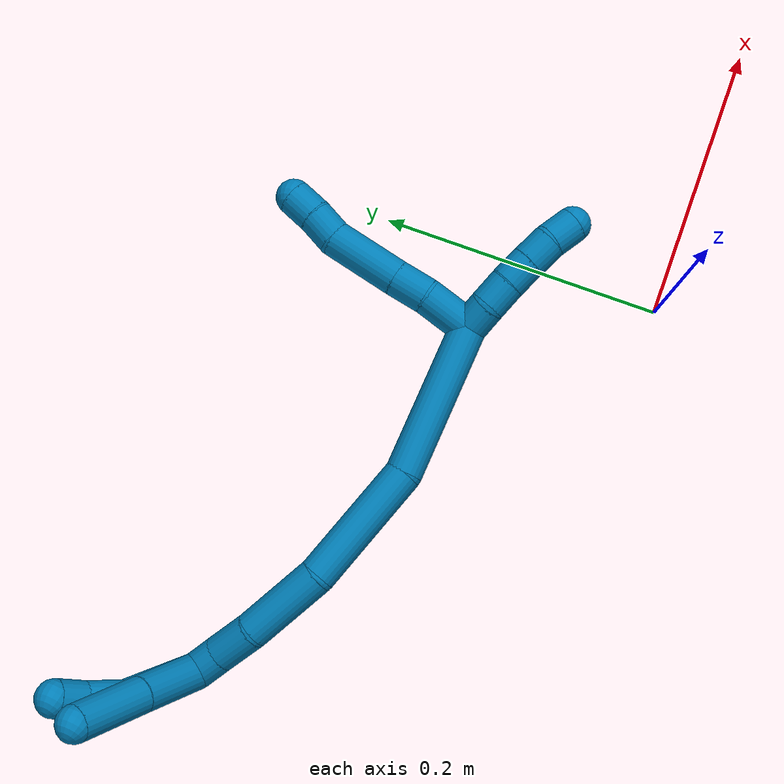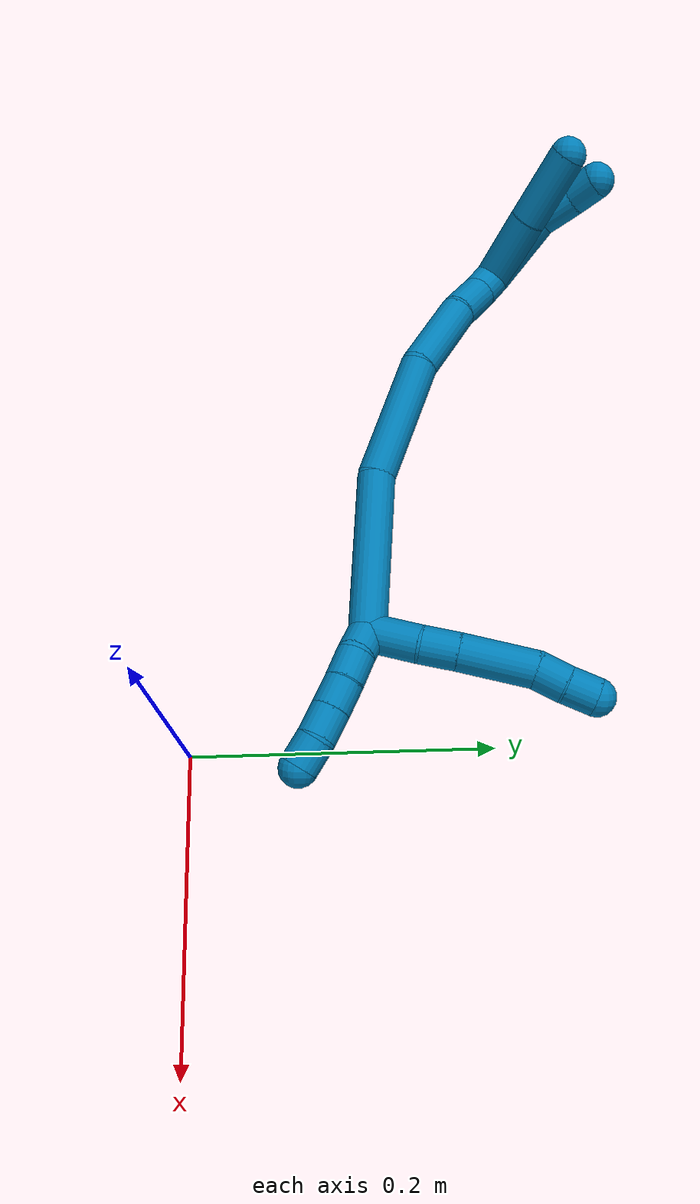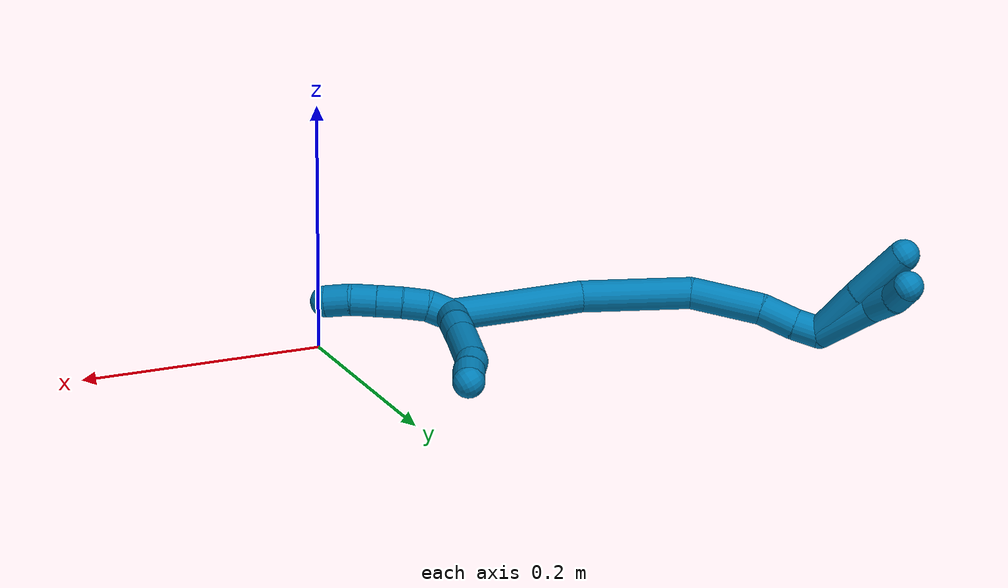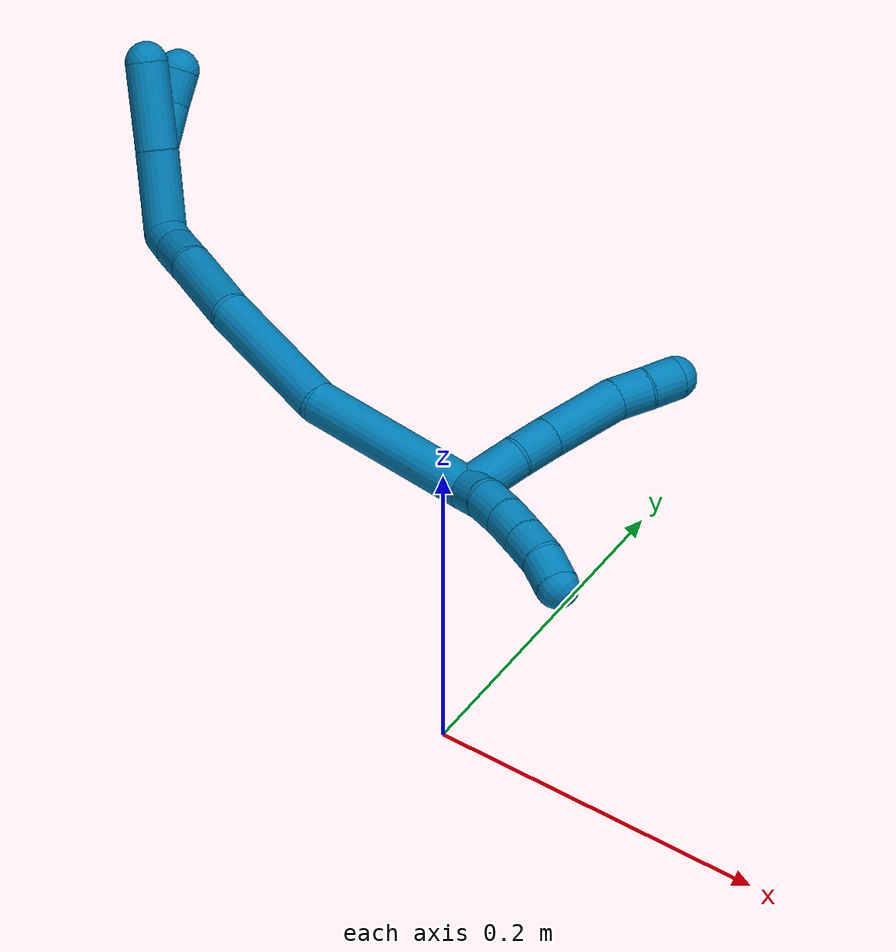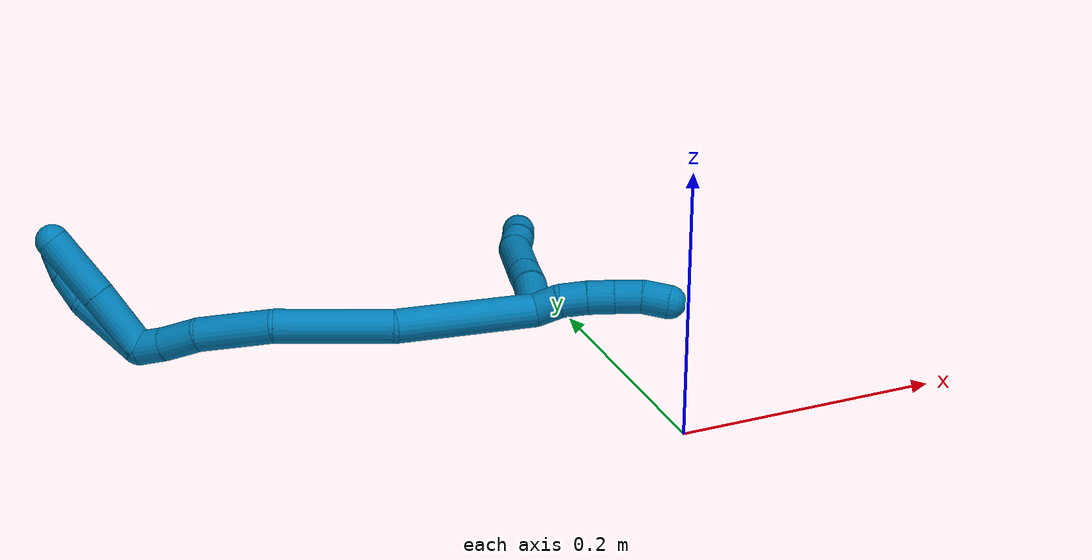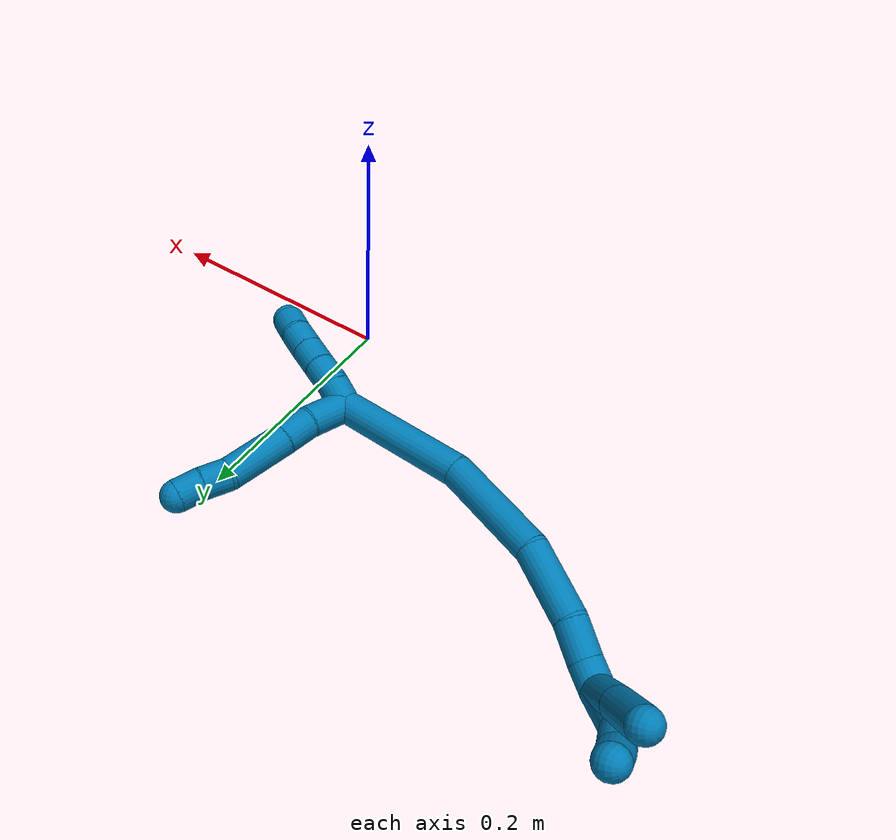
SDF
<sdf version="1.7">
 <world name="default">
  <model name="9">
   <static>0</static>
   <link name="9">
    <collision name="collision-cylinder-e_1_2_8">
     <pose>0.001437 0.017019 -0.002415 -1.71177 0.083404 -0.096058</pose>
     <geometry><cylinder><radius>0.0125</radius><length>0.034499</length></cylinder></geometry>
     <surface>
      <friction><ode><mu>1.16</mu><mu2>1.16</mu2><slip1>0</slip1><slip2>0</slip2></ode></friction>
      <contact><ode><kp>1e+06</kp><kd>1</kd><max_vel>0</max_vel><min_depth>0.001</min_depth></ode></contact>
     </surface>
    </collision>
    <visual name="visual-cylinder-e_1_2_8">
     <pose>0.001437 0.017019 -0.002415 -1.71177 0.083404 -0.096058</pose>
     <geometry><cylinder><radius>0.0125</radius><length>0.034499</length></cylinder></geometry>
     <material><ambient>0 0.490196 0.709804 1</ambient></material>
    </visual>
    <collision name="collision-cylinder-e_2_8_9">
     <pose>0.001735 0.045959 -0.006475 -1.70789 -0.094375 0.108263</pose>
     <geometry><cylinder><radius>0.0125</radius><length>0.024175</length></cylinder></geometry>
     <surface>
      <friction><ode><mu>1.16</mu><mu2>1.16</mu2><slip1>0</slip1><slip2>0</slip2></ode></friction>
      <contact><ode><kp>1e+06</kp><kd>1</kd><max_vel>0</max_vel><min_depth>0.001</min_depth></ode></contact>
     </surface>
    </collision>
    <visual name="visual-cylinder-e_2_8_9">
     <pose>0.001735 0.045959 -0.006475 -1.70789 -0.094375 0.108263</pose>
     <geometry><cylinder><radius>0.0125</radius><length>0.024175</length></cylinder></geometry>
     <material><ambient>0 0.490196 0.709804 1</ambient></material>
    </visual>
    <collision name="collision-cylinder-e_3_9_10">
     <pose>-0.001356 0.082723 -0.012271 -1.73637 -0.077333 0.09131</pose>
     <geometry><cylinder><radius>0.0125</radius><length>0.050526</length></cylinder></geometry>
     <surface>
      <friction><ode><mu>1.16</mu><mu2>1.16</mu2><slip1>0</slip1><slip2>0</slip2></ode></friction>
      <contact><ode><kp>1e+06</kp><kd>1</kd><max_vel>0</max_vel><min_depth>0.001</min_depth></ode></contact>
     </surface>
    </collision>
    <visual name="visual-cylinder-e_3_9_10">
     <pose>-0.001356 0.082723 -0.012271 -1.73637 -0.077333 0.09131</pose>
     <geometry><cylinder><radius>0.0125</radius><length>0.050526</length></cylinder></geometry>
     <material><ambient>0 0.490196 0.709804 1</ambient></material>
    </visual>
    <collision name="collision-cylinder-e_4_10_11">
     <pose>-0.002556 0.117081 -0.020275 -1.95551 0.07306 -0.108345</pose>
     <geometry><cylinder><radius>0.0125</radius><length>0.020584</length></cylinder></geometry>
     <surface>
      <friction><ode><mu>1.16</mu><mu2>1.16</mu2><slip1>0</slip1><slip2>0</slip2></ode></friction>
      <contact><ode><kp>1e+06</kp><kd>1</kd><max_vel>0</max_vel><min_depth>0.001</min_depth></ode></contact>
     </surface>
    </collision>
    <visual name="visual-cylinder-e_4_10_11">
     <pose>-0.002556 0.117081 -0.020275 -1.95551 0.07306 -0.108345</pose>
     <geometry><cylinder><radius>0.0125</radius><length>0.020584</length></cylinder></geometry>
     <material><ambient>0 0.490196 0.709804 1</ambient></material>
    </visual>
    <collision name="collision-cylinder-e_5_11_6">
     <pose>-0.00214 0.136156 -0.027389 -1.89966 -0.03315 0.046336</pose>
     <geometry><cylinder><radius>0.0125</radius><length>0.020215</length></cylinder></geometry>
     <surface>
      <friction><ode><mu>1.16</mu><mu2>1.16</mu2><slip1>0</slip1><slip2>0</slip2></ode></friction>
      <contact><ode><kp>1e+06</kp><kd>1</kd><max_vel>0</max_vel><min_depth>0.001</min_depth></ode></contact>
     </surface>
    </collision>
    <visual name="visual-cylinder-e_5_11_6">
     <pose>-0.00214 0.136156 -0.027389 -1.89966 -0.03315 0.046336</pose>
     <geometry><cylinder><radius>0.0125</radius><length>0.020215</length></cylinder></geometry>
     <material><ambient>0 0.490196 0.709804 1</ambient></material>
    </visual>
    <collision name="collision-cylinder-e_1_2_12">
     <pose>0.007545 -0.002115 -0.006213 2.81348 0.854902 2.44447</pose>
     <geometry><cylinder><radius>0.0125</radius><length>0.02</length></cylinder></geometry>
     <surface>
      <friction><ode><mu>1.16</mu><mu2>1.16</mu2><slip1>0</slip1><slip2>0</slip2></ode></friction>
      <contact><ode><kp>1e+06</kp><kd>1</kd><max_vel>0</max_vel><min_depth>0.001</min_depth></ode></contact>
     </surface>
    </collision>
    <visual name="visual-cylinder-e_1_2_12">
     <pose>0.007545 -0.002115 -0.006213 2.81348 0.854902 2.44447</pose>
     <geometry><cylinder><radius>0.0125</radius><length>0.02</length></cylinder></geometry>
     <material><ambient>0 0.490196 0.709804 1</ambient></material>
    </visual>
    <collision name="collision-cylinder-e_2_12_13">
     <pose>0.020674 -0.006603 -0.020375 2.85151 0.592455 2.24887</pose>
     <geometry><cylinder><radius>0.0125</radius><length>0.02</length></cylinder></geometry>
     <surface>
      <friction><ode><mu>1.16</mu><mu2>1.16</mu2><slip1>0</slip1><slip2>0</slip2></ode></friction>
      <contact><ode><kp>1e+06</kp><kd>1</kd><max_vel>0</max_vel><min_depth>0.001</min_depth></ode></contact>
     </surface>
    </collision>
    <visual name="visual-cylinder-e_2_12_13">
     <pose>0.020674 -0.006603 -0.020375 2.85151 0.592455 2.24887</pose>
     <geometry><cylinder><radius>0.0125</radius><length>0.02</length></cylinder></geometry>
     <material><ambient>0 0.490196 0.709804 1</ambient></material>
    </visual>
    <collision name="collision-cylinder-e_3_13_14">
     <pose>0.031204 -0.011905 -0.036507 2.79777 0.517357 1.98021</pose>
     <geometry><cylinder><radius>0.0125</radius><length>0.02</length></cylinder></geometry>
     <surface>
      <friction><ode><mu>1.16</mu><mu2>1.16</mu2><slip1>0</slip1><slip2>0</slip2></ode></friction>
      <contact><ode><kp>1e+06</kp><kd>1</kd><max_vel>0</max_vel><min_depth>0.001</min_depth></ode></contact>
     </surface>
    </collision>
    <visual name="visual-cylinder-e_3_13_14">
     <pose>0.031204 -0.011905 -0.036507 2.79777 0.517357 1.98021</pose>
     <geometry><cylinder><radius>0.0125</radius><length>0.02</length></cylinder></geometry>
     <material><ambient>0 0.490196 0.709804 1</ambient></material>
    </visual>
    <collision name="collision-cylinder-e_4_14_15">
     <pose>0.040976 -0.017958 -0.052872 2.77703 0.503636 1.89823</pose>
     <geometry><cylinder><radius>0.0125</radius><length>0.02</length></cylinder></geometry>
     <surface>
      <friction><ode><mu>1.16</mu><mu2>1.16</mu2><slip1>0</slip1><slip2>0</slip2></ode></friction>
      <contact><ode><kp>1e+06</kp><kd>1</kd><max_vel>0</max_vel><min_depth>0.001</min_depth></ode></contact>
     </surface>
    </collision>
    <visual name="visual-cylinder-e_4_14_15">
     <pose>0.040976 -0.017958 -0.052872 2.77703 0.503636 1.89823</pose>
     <geometry><cylinder><radius>0.0125</radius><length>0.02</length></cylinder></geometry>
     <material><ambient>0 0.490196 0.709804 1</ambient></material>
    </visual>
    <collision name="collision-cylinder-e_5_15_5">
     <pose>0.048926 -0.02541 -0.06951 2.66834 0.317692 1.17276</pose>
     <geometry><cylinder><radius>0.0125</radius><length>0.02</length></cylinder></geometry>
     <surface>
      <friction><ode><mu>1.16</mu><mu2>1.16</mu2><slip1>0</slip1><slip2>0</slip2></ode></friction>
      <contact><ode><kp>1e+06</kp><kd>1</kd><max_vel>0</max_vel><min_depth>0.001</min_depth></ode></contact>
     </surface>
    </collision>
    <visual name="visual-cylinder-e_5_15_5">
     <pose>0.048926 -0.02541 -0.06951 2.66834 0.317692 1.17276</pose>
     <geometry><cylinder><radius>0.0125</radius><length>0.02</length></cylinder></geometry>
     <material><ambient>0 0.490196 0.709804 1</ambient></material>
    </visual>
    <collision name="collision-cylinder-e_1_2_16">
     <pose>-0.021876 -0.003157 0.048774 0.064639 -0.420843 -0.01381</pose>
     <geometry><cylinder><radius>0.0125</radius><length>0.107098</length></cylinder></geometry>
     <surface>
      <friction><ode><mu>1.16</mu><mu2>1.16</mu2><slip1>0</slip1><slip2>0</slip2></ode></friction>
      <contact><ode><kp>1e+06</kp><kd>1</kd><max_vel>0</max_vel><min_depth>0.001</min_depth></ode></contact>
     </surface>
    </collision>
    <visual name="visual-cylinder-e_1_2_16">
     <pose>-0.021876 -0.003157 0.048774 0.064639 -0.420843 -0.01381</pose>
     <geometry><cylinder><radius>0.0125</radius><length>0.107098</length></cylinder></geometry>
     <material><ambient>0 0.490196 0.709804 1</ambient></material>
    </visual>
    <collision name="collision-cylinder-e_2_16_17">
     <pose>-0.062446 0.003367 0.135425 -0.250232 -0.446024 0.057031</pose>
     <geometry><cylinder><radius>0.0125</radius><length>0.086667</length></cylinder></geometry>
     <surface>
      <friction><ode><mu>1.16</mu><mu2>1.16</mu2><slip1>0</slip1><slip2>0</slip2></ode></friction>
      <contact><ode><kp>1e+06</kp><kd>1</kd><max_vel>0</max_vel><min_depth>0.001</min_depth></ode></contact>
     </surface>
    </collision>
    <visual name="visual-cylinder-e_2_16_17">
     <pose>-0.062446 0.003367 0.135425 -0.250232 -0.446024 0.057031</pose>
     <geometry><cylinder><radius>0.0125</radius><length>0.086667</length></cylinder></geometry>
     <material><ambient>0 0.490196 0.709804 1</ambient></material>
    </visual>
    <collision name="collision-cylinder-e_3_17_18">
     <pose>-0.098189 0.023415 0.193467 -0.474892 -0.644757 0.161328</pose>
     <geometry><cylinder><radius>0.0125</radius><length>0.056739</length></cylinder></geometry>
     <surface>
      <friction><ode><mu>1.16</mu><mu2>1.16</mu2><slip1>0</slip1><slip2>0</slip2></ode></friction>
      <contact><ode><kp>1e+06</kp><kd>1</kd><max_vel>0</max_vel><min_depth>0.001</min_depth></ode></contact>
     </surface>
    </collision>
    <visual name="visual-cylinder-e_3_17_18">
     <pose>-0.098189 0.023415 0.193467 -0.474892 -0.644757 0.161328</pose>
     <geometry><cylinder><radius>0.0125</radius><length>0.056739</length></cylinder></geometry>
     <material><ambient>0 0.490196 0.709804 1</ambient></material>
    </visual>
    <collision name="collision-cylinder-e_4_18_19">
     <pose>-0.125821 0.039584 0.221662 -0.625679 -0.818346 0.278718</pose>
     <geometry><cylinder><radius>0.0125</radius><length>0.02899</length></cylinder></geometry>
     <surface>
      <friction><ode><mu>1.16</mu><mu2>1.16</mu2><slip1>0</slip1><slip2>0</slip2></ode></friction>
      <contact><ode><kp>1e+06</kp><kd>1</kd><max_vel>0</max_vel><min_depth>0.001</min_depth></ode></contact>
     </surface>
    </collision>
    <visual name="visual-cylinder-e_4_18_19">
     <pose>-0.125821 0.039584 0.221662 -0.625679 -0.818346 0.278718</pose>
     <geometry><cylinder><radius>0.0125</radius><length>0.02899</length></cylinder></geometry>
     <material><ambient>0 0.490196 0.709804 1</ambient></material>
    </visual>
    <collision name="collision-cylinder-e_5_19_1">
     <pose>-0.143124 0.049593 0.236192 -0.574457 -0.714883 0.219764</pose>
     <geometry><cylinder><radius>0.0125</radius><length>0.020506</length></cylinder></geometry>
     <surface>
      <friction><ode><mu>1.16</mu><mu2>1.16</mu2><slip1>0</slip1><slip2>0</slip2></ode></friction>
      <contact><ode><kp>1e+06</kp><kd>1</kd><max_vel>0</max_vel><min_depth>0.001</min_depth></ode></contact>
     </surface>
    </collision>
    <visual name="visual-cylinder-e_5_19_1">
     <pose>-0.143124 0.049593 0.236192 -0.574457 -0.714883 0.219764</pose>
     <geometry><cylinder><radius>0.0125</radius><length>0.020506</length></cylinder></geometry>
     <material><ambient>0 0.490196 0.709804 1</ambient></material>
    </visual>
    <collision name="collision-cylinder-e_1_1_20">
     <pose>-0.139953 0.065738 0.261655 -0.561863 0.415724 -0.121571</pose>
     <geometry><cylinder><radius>0.0125</radius><length>0.048988</length></cylinder></geometry>
     <surface>
      <friction><ode><mu>1.16</mu><mu2>1.16</mu2><slip1>0</slip1><slip2>0</slip2></ode></friction>
      <contact><ode><kp>1e+06</kp><kd>1</kd><max_vel>0</max_vel><min_depth>0.001</min_depth></ode></contact>
     </surface>
    </collision>
    <visual name="visual-cylinder-e_1_1_20">
     <pose>-0.139953 0.065738 0.261655 -0.561863 0.415724 -0.121571</pose>
     <geometry><cylinder><radius>0.0125</radius><length>0.048988</length></cylinder></geometry>
     <material><ambient>0 0.490196 0.709804 1</ambient></material>
    </visual>
    <collision name="collision-cylinder-e_2_20_4">
     <pose>-0.12075 0.090342 0.300704 -0.562572 0.373685 -0.109141</pose>
     <geometry><cylinder><radius>0.0125</radius><length>0.051012</length></cylinder></geometry>
     <surface>
      <friction><ode><mu>1.16</mu><mu2>1.16</mu2><slip1>0</slip1><slip2>0</slip2></ode></friction>
      <contact><ode><kp>1e+06</kp><kd>1</kd><max_vel>0</max_vel><min_depth>0.001</min_depth></ode></contact>
     </surface>
    </collision>
    <visual name="visual-cylinder-e_2_20_4">
     <pose>-0.12075 0.090342 0.300704 -0.562572 0.373685 -0.109141</pose>
     <geometry><cylinder><radius>0.0125</radius><length>0.051012</length></cylinder></geometry>
     <material><ambient>0 0.490196 0.709804 1</ambient></material>
    </visual>
    <collision name="collision-cylinder-e_1_1_21">
     <pose>-0.145786 0.069623 0.263303 -0.654721 0.15495 -0.052711</pose>
     <geometry><cylinder><radius>0.0125</radius><length>0.052598</length></cylinder></geometry>
     <surface>
      <friction><ode><mu>1.16</mu><mu2>1.16</mu2><slip1>0</slip1><slip2>0</slip2></ode></friction>
      <contact><ode><kp>1e+06</kp><kd>1</kd><max_vel>0</max_vel><min_depth>0.001</min_depth></ode></contact>
     </surface>
    </collision>
    <visual name="visual-cylinder-e_1_1_21">
     <pose>-0.145786 0.069623 0.263303 -0.654721 0.15495 -0.052711</pose>
     <geometry><cylinder><radius>0.0125</radius><length>0.052598</length></cylinder></geometry>
     <material><ambient>0 0.490196 0.709804 1</ambient></material>
    </visual>
    <collision name="collision-cylinder-e_2_21_22">
     <pose>-0.139126 0.096488 0.291069 -0.995817 0.195244 -0.106371</pose>
     <geometry><cylinder><radius>0.0125</radius><length>0.026826</length></cylinder></geometry>
     <surface>
      <friction><ode><mu>1.16</mu><mu2>1.16</mu2><slip1>0</slip1><slip2>0</slip2></ode></friction>
      <contact><ode><kp>1e+06</kp><kd>1</kd><max_vel>0</max_vel><min_depth>0.001</min_depth></ode></contact>
     </surface>
    </collision>
    <visual name="visual-cylinder-e_2_21_22">
     <pose>-0.139126 0.096488 0.291069 -0.995817 0.195244 -0.106371</pose>
     <geometry><cylinder><radius>0.0125</radius><length>0.026826</length></cylinder></geometry>
     <material><ambient>0 0.490196 0.709804 1</ambient></material>
    </visual>
    <collision name="collision-cylinder-e_3_22_3">
     <pose>-0.132189 0.115395 0.303245 -1.0026 0.434922 -0.240991</pose>
     <geometry><cylinder><radius>0.0125</radius><length>0.020576</length></cylinder></geometry>
     <surface>
      <friction><ode><mu>1.16</mu><mu2>1.16</mu2><slip1>0</slip1><slip2>0</slip2></ode></friction>
      <contact><ode><kp>1e+06</kp><kd>1</kd><max_vel>0</max_vel><min_depth>0.001</min_depth></ode></contact>
     </surface>
    </collision>
    <visual name="visual-cylinder-e_3_22_3">
     <pose>-0.132189 0.115395 0.303245 -1.0026 0.434922 -0.240991</pose>
     <geometry><cylinder><radius>0.0125</radius><length>0.020576</length></cylinder></geometry>
     <material><ambient>0 0.490196 0.709804 1</ambient></material>
    </visual>
    <collision name="collision-sphere-3">
     <pose>-0.127854 0.123259 0.308266 0 -0 0</pose>
     <geometry><sphere><radius>0.0125</radius></sphere></geometry>
     <surface>
      <friction><ode><mu>1.16</mu><mu2>1.16</mu2><slip1>0</slip1><slip2>0</slip2></ode></friction>
      <contact><ode><kp>1e+06</kp><kd>1</kd><max_vel>0</max_vel><min_depth>0.001</min_depth></ode></contact>
     </surface>
    </collision>
    <visual name="visual-sphere-3">
     <pose>-0.127854 0.123259 0.308266 0 -0 0</pose>
     <geometry><sphere><radius>0.0125</radius></sphere></geometry>
     <material><ambient>0 0.490196 0.709804 1</ambient></material>
    </visual>
    <collision name="collision-sphere-22">
     <pose>-0.136523 0.10753 0.298225 0 -0 0</pose>
     <geometry><sphere><radius>0.0125</radius></sphere></geometry>
     <surface>
      <friction><ode><mu>1.16</mu><mu2>1.16</mu2><slip1>0</slip1><slip2>0</slip2></ode></friction>
      <contact><ode><kp>1e+06</kp><kd>1</kd><max_vel>0</max_vel><min_depth>0.001</min_depth></ode></contact>
     </surface>
    </collision>
    <visual name="visual-sphere-22">
     <pose>-0.136523 0.10753 0.298225 0 -0 0</pose>
     <geometry><sphere><radius>0.0125</radius></sphere></geometry>
     <material><ambient>0 0.490196 0.709804 1</ambient></material>
    </visual>
    <collision name="collision-sphere-21">
     <pose>-0.141728 0.085446 0.283913 0 -0 0</pose>
     <geometry><sphere><radius>0.0125</radius></sphere></geometry>
     <surface>
      <friction><ode><mu>1.16</mu><mu2>1.16</mu2><slip1>0</slip1><slip2>0</slip2></ode></friction>
      <contact><ode><kp>1e+06</kp><kd>1</kd><max_vel>0</max_vel><min_depth>0.001</min_depth></ode></contact>
     </surface>
    </collision>
    <visual name="visual-sphere-21">
     <pose>-0.141728 0.085446 0.283913 0 -0 0</pose>
     <geometry><sphere><radius>0.0125</radius></sphere></geometry>
     <material><ambient>0 0.490196 0.709804 1</ambient></material>
    </visual>
    <collision name="collision-sphere-4">
     <pose>-0.111439 0.103007 0.32079 0 -0 0</pose>
     <geometry><sphere><radius>0.0125</radius></sphere></geometry>
     <surface>
      <friction><ode><mu>1.16</mu><mu2>1.16</mu2><slip1>0</slip1><slip2>0</slip2></ode></friction>
      <contact><ode><kp>1e+06</kp><kd>1</kd><max_vel>0</max_vel><min_depth>0.001</min_depth></ode></contact>
     </surface>
    </collision>
    <visual name="visual-sphere-4">
     <pose>-0.111439 0.103007 0.32079 0 -0 0</pose>
     <geometry><sphere><radius>0.0125</radius></sphere></geometry>
     <material><ambient>0 0.490196 0.709804 1</ambient></material>
    </visual>
    <collision name="collision-sphere-20">
     <pose>-0.130061 0.077677 0.280618 0 -0 0</pose>
     <geometry><sphere><radius>0.0125</radius></sphere></geometry>
     <surface>
      <friction><ode><mu>1.16</mu><mu2>1.16</mu2><slip1>0</slip1><slip2>0</slip2></ode></friction>
      <contact><ode><kp>1e+06</kp><kd>1</kd><max_vel>0</max_vel><min_depth>0.001</min_depth></ode></contact>
     </surface>
    </collision>
    <visual name="visual-sphere-20">
     <pose>-0.130061 0.077677 0.280618 0 -0 0</pose>
     <geometry><sphere><radius>0.0125</radius></sphere></geometry>
     <material><ambient>0 0.490196 0.709804 1</ambient></material>
    </visual>
    <collision name="collision-sphere-6">
     <pose>-0.002475 0.145716 -0.030652 0 -0 0</pose>
     <geometry><sphere><radius>0.0125</radius></sphere></geometry>
     <surface>
      <friction><ode><mu>1.16</mu><mu2>1.16</mu2><slip1>0</slip1><slip2>0</slip2></ode></friction>
      <contact><ode><kp>1e+06</kp><kd>1</kd><max_vel>0</max_vel><min_depth>0.001</min_depth></ode></contact>
     </surface>
    </collision>
    <visual name="visual-sphere-6">
     <pose>-0.002475 0.145716 -0.030652 0 -0 0</pose>
     <geometry><sphere><radius>0.0125</radius></sphere></geometry>
     <material><ambient>0 0.490196 0.709804 1</ambient></material>
    </visual>
    <collision name="collision-sphere-11">
     <pose>-0.001805 0.126595 -0.024127 0 -0 0</pose>
     <geometry><sphere><radius>0.0125</radius></sphere></geometry>
     <surface>
      <friction><ode><mu>1.16</mu><mu2>1.16</mu2><slip1>0</slip1><slip2>0</slip2></ode></friction>
      <contact><ode><kp>1e+06</kp><kd>1</kd><max_vel>0</max_vel><min_depth>0.001</min_depth></ode></contact>
     </surface>
    </collision>
    <visual name="visual-sphere-11">
     <pose>-0.001805 0.126595 -0.024127 0 -0 0</pose>
     <geometry><sphere><radius>0.0125</radius></sphere></geometry>
     <material><ambient>0 0.490196 0.709804 1</ambient></material>
    </visual>
    <collision name="collision-sphere-10">
     <pose>-0.003308 0.107566 -0.016422 0 -0 0</pose>
     <geometry><sphere><radius>0.0125</radius></sphere></geometry>
     <surface>
      <friction><ode><mu>1.16</mu><mu2>1.16</mu2><slip1>0</slip1><slip2>0</slip2></ode></friction>
      <contact><ode><kp>1e+06</kp><kd>1</kd><max_vel>0</max_vel><min_depth>0.001</min_depth></ode></contact>
     </surface>
    </collision>
    <visual name="visual-sphere-10">
     <pose>-0.003308 0.107566 -0.016422 0 -0 0</pose>
     <geometry><sphere><radius>0.0125</radius></sphere></geometry>
     <material><ambient>0 0.490196 0.709804 1</ambient></material>
    </visual>
    <collision name="collision-sphere-9">
     <pose>0.000596 0.05788 -0.00812 0 -0 0</pose>
     <geometry><sphere><radius>0.0125</radius></sphere></geometry>
     <surface>
      <friction><ode><mu>1.16</mu><mu2>1.16</mu2><slip1>0</slip1><slip2>0</slip2></ode></friction>
      <contact><ode><kp>1e+06</kp><kd>1</kd><max_vel>0</max_vel><min_depth>0.001</min_depth></ode></contact>
     </surface>
    </collision>
    <visual name="visual-sphere-9">
     <pose>0.000596 0.05788 -0.00812 0 -0 0</pose>
     <geometry><sphere><radius>0.0125</radius></sphere></geometry>
     <material><ambient>0 0.490196 0.709804 1</ambient></material>
    </visual>
    <collision name="collision-sphere-2">
     <geometry><sphere><radius>0.0125</radius></sphere></geometry>
     <surface>
      <friction><ode><mu>1.16</mu><mu2>1.16</mu2><slip1>0</slip1><slip2>0</slip2></ode></friction>
      <contact><ode><kp>1e+06</kp><kd>1</kd><max_vel>0</max_vel><min_depth>0.001</min_depth></ode></contact>
     </surface>
    </collision>
    <visual name="visual-sphere-2">
     <geometry><sphere><radius>0.0125</radius></sphere></geometry>
     <material><ambient>0 0.490196 0.709804 1</ambient></material>
    </visual>
    <collision name="collision-sphere-19">
     <pose>-0.136403 0.045386 0.229692 0 -0 0</pose>
     <geometry><sphere><radius>0.0125</radius></sphere></geometry>
     <surface>
      <friction><ode><mu>1.16</mu><mu2>1.16</mu2><slip1>0</slip1><slip2>0</slip2></ode></friction>
      <contact><ode><kp>1e+06</kp><kd>1</kd><max_vel>0</max_vel><min_depth>0.001</min_depth></ode></contact>
     </surface>
    </collision>
    <visual name="visual-sphere-19">
     <pose>-0.136403 0.045386 0.229692 0 -0 0</pose>
     <geometry><sphere><radius>0.0125</radius></sphere></geometry>
     <material><ambient>0 0.490196 0.709804 1</ambient></material>
    </visual>
    <collision name="collision-sphere-8">
     <pose>0.002874 0.034038 -0.00483 0 -0 0</pose>
     <geometry><sphere><radius>0.0125</radius></sphere></geometry>
     <surface>
      <friction><ode><mu>1.16</mu><mu2>1.16</mu2><slip1>0</slip1><slip2>0</slip2></ode></friction>
      <contact><ode><kp>1e+06</kp><kd>1</kd><max_vel>0</max_vel><min_depth>0.001</min_depth></ode></contact>
     </surface>
    </collision>
    <visual name="visual-sphere-8">
     <pose>0.002874 0.034038 -0.00483 0 -0 0</pose>
     <geometry><sphere><radius>0.0125</radius></sphere></geometry>
     <material><ambient>0 0.490196 0.709804 1</ambient></material>
    </visual>
    <collision name="collision-sphere-12">
     <pose>0.01509 -0.00423 -0.012426 0 -0 0</pose>
     <geometry><sphere><radius>0.0125</radius></sphere></geometry>
     <surface>
      <friction><ode><mu>1.16</mu><mu2>1.16</mu2><slip1>0</slip1><slip2>0</slip2></ode></friction>
      <contact><ode><kp>1e+06</kp><kd>1</kd><max_vel>0</max_vel><min_depth>0.001</min_depth></ode></contact>
     </surface>
    </collision>
    <visual name="visual-sphere-12">
     <pose>0.01509 -0.00423 -0.012426 0 -0 0</pose>
     <geometry><sphere><radius>0.0125</radius></sphere></geometry>
     <material><ambient>0 0.490196 0.709804 1</ambient></material>
    </visual>
    <collision name="collision-sphere-13">
     <pose>0.026258 -0.008976 -0.028324 0 -0 0</pose>
     <geometry><sphere><radius>0.0125</radius></sphere></geometry>
     <surface>
      <friction><ode><mu>1.16</mu><mu2>1.16</mu2><slip1>0</slip1><slip2>0</slip2></ode></friction>
      <contact><ode><kp>1e+06</kp><kd>1</kd><max_vel>0</max_vel><min_depth>0.001</min_depth></ode></contact>
     </surface>
    </collision>
    <visual name="visual-sphere-13">
     <pose>0.026258 -0.008976 -0.028324 0 -0 0</pose>
     <geometry><sphere><radius>0.0125</radius></sphere></geometry>
     <material><ambient>0 0.490196 0.709804 1</ambient></material>
    </visual>
    <collision name="collision-sphere-14">
     <pose>0.03615 -0.014835 -0.044689 0 -0 0</pose>
     <geometry><sphere><radius>0.0125</radius></sphere></geometry>
     <surface>
      <friction><ode><mu>1.16</mu><mu2>1.16</mu2><slip1>0</slip1><slip2>0</slip2></ode></friction>
      <contact><ode><kp>1e+06</kp><kd>1</kd><max_vel>0</max_vel><min_depth>0.001</min_depth></ode></contact>
     </surface>
    </collision>
    <visual name="visual-sphere-14">
     <pose>0.03615 -0.014835 -0.044689 0 -0 0</pose>
     <geometry><sphere><radius>0.0125</radius></sphere></geometry>
     <material><ambient>0 0.490196 0.709804 1</ambient></material>
    </visual>
    <collision name="collision-sphere-15">
     <pose>0.045802 -0.02108 -0.061055 0 -0 0</pose>
     <geometry><sphere><radius>0.0125</radius></sphere></geometry>
     <surface>
      <friction><ode><mu>1.16</mu><mu2>1.16</mu2><slip1>0</slip1><slip2>0</slip2></ode></friction>
      <contact><ode><kp>1e+06</kp><kd>1</kd><max_vel>0</max_vel><min_depth>0.001</min_depth></ode></contact>
     </surface>
    </collision>
    <visual name="visual-sphere-15">
     <pose>0.045802 -0.02108 -0.061055 0 -0 0</pose>
     <geometry><sphere><radius>0.0125</radius></sphere></geometry>
     <material><ambient>0 0.490196 0.709804 1</ambient></material>
    </visual>
    <collision name="collision-sphere-5">
     <pose>0.05205 -0.02974 -0.077966 0 -0 0</pose>
     <geometry><sphere><radius>0.0125</radius></sphere></geometry>
     <surface>
      <friction><ode><mu>1.16</mu><mu2>1.16</mu2><slip1>0</slip1><slip2>0</slip2></ode></friction>
      <contact><ode><kp>1e+06</kp><kd>1</kd><max_vel>0</max_vel><min_depth>0.001</min_depth></ode></contact>
     </surface>
    </collision>
    <visual name="visual-sphere-5">
     <pose>0.05205 -0.02974 -0.077966 0 -0 0</pose>
     <geometry><sphere><radius>0.0125</radius></sphere></geometry>
     <material><ambient>0 0.490196 0.709804 1</ambient></material>
    </visual>
    <collision name="collision-sphere-16">
     <pose>-0.043753 -0.006314 0.097549 0 -0 0</pose>
     <geometry><sphere><radius>0.0125</radius></sphere></geometry>
     <surface>
      <friction><ode><mu>1.16</mu><mu2>1.16</mu2><slip1>0</slip1><slip2>0</slip2></ode></friction>
      <contact><ode><kp>1e+06</kp><kd>1</kd><max_vel>0</max_vel><min_depth>0.001</min_depth></ode></contact>
     </surface>
    </collision>
    <visual name="visual-sphere-16">
     <pose>-0.043753 -0.006314 0.097549 0 -0 0</pose>
     <geometry><sphere><radius>0.0125</radius></sphere></geometry>
     <material><ambient>0 0.490196 0.709804 1</ambient></material>
    </visual>
    <collision name="collision-sphere-17">
     <pose>-0.081139 0.013047 0.173302 0 -0 0</pose>
     <geometry><sphere><radius>0.0125</radius></sphere></geometry>
     <surface>
      <friction><ode><mu>1.16</mu><mu2>1.16</mu2><slip1>0</slip1><slip2>0</slip2></ode></friction>
      <contact><ode><kp>1e+06</kp><kd>1</kd><max_vel>0</max_vel><min_depth>0.001</min_depth></ode></contact>
     </surface>
    </collision>
    <visual name="visual-sphere-17">
     <pose>-0.081139 0.013047 0.173302 0 -0 0</pose>
     <geometry><sphere><radius>0.0125</radius></sphere></geometry>
     <material><ambient>0 0.490196 0.709804 1</ambient></material>
    </visual>
    <collision name="collision-sphere-18">
     <pose>-0.11524 0.033783 0.213632 0 -0 0</pose>
     <geometry><sphere><radius>0.0125</radius></sphere></geometry>
     <surface>
      <friction><ode><mu>1.16</mu><mu2>1.16</mu2><slip1>0</slip1><slip2>0</slip2></ode></friction>
      <contact><ode><kp>1e+06</kp><kd>1</kd><max_vel>0</max_vel><min_depth>0.001</min_depth></ode></contact>
     </surface>
    </collision>
    <visual name="visual-sphere-18">
     <pose>-0.11524 0.033783 0.213632 0 -0 0</pose>
     <geometry><sphere><radius>0.0125</radius></sphere></geometry>
     <material><ambient>0 0.490196 0.709804 1</ambient></material>
    </visual>
    <collision name="collision-sphere-1">
     <pose>-0.149845 0.0538 0.242692 0 -0 0</pose>
     <geometry><sphere><radius>0.0125</radius></sphere></geometry>
     <surface>
      <friction><ode><mu>1.16</mu><mu2>1.16</mu2><slip1>0</slip1><slip2>0</slip2></ode></friction>
      <contact><ode><kp>1e+06</kp><kd>1</kd><max_vel>0</max_vel><min_depth>0.001</min_depth></ode></contact>
     </surface>
    </collision>
    <visual name="visual-sphere-1">
     <pose>-0.149845 0.0538 0.242692 0 -0 0</pose>
     <geometry><sphere><radius>0.0125</radius></sphere></geometry>
     <material><ambient>0 0.490196 0.709804 1</ambient></material>
    </visual>
    <inertial>
     <pose>-0.058841 0.039548 0.119628 0 -0 0</pose>
     <mass>0.75</mass>
     <inertia>
      <ixx>0.000231</ixx>
      <ixy>0</ixy>
      <ixz>0</ixz>
      <iyy>0.000247</iyy>
      <iyz>0</iyz>
      <izz>2.9e-05</izz>
     </inertia>
    </inertial>
   </link>
   <pose>-0.064136 0.118975 0.055843 0.20277 -1.10551 -0.316618</pose>
  </model>
 </world>
</sdf>
